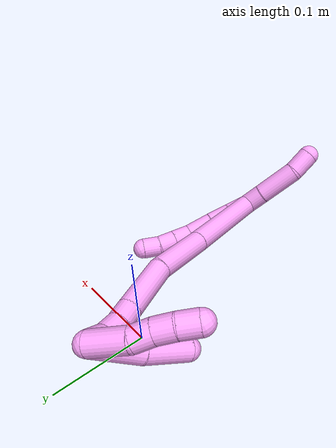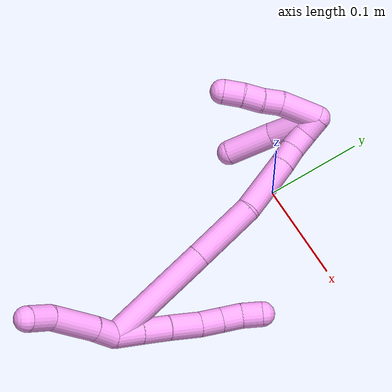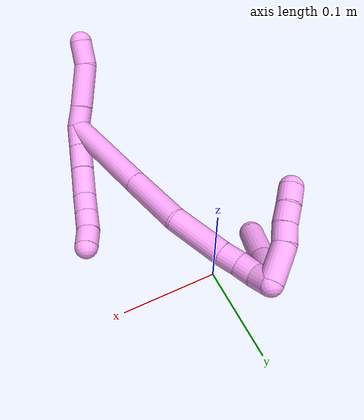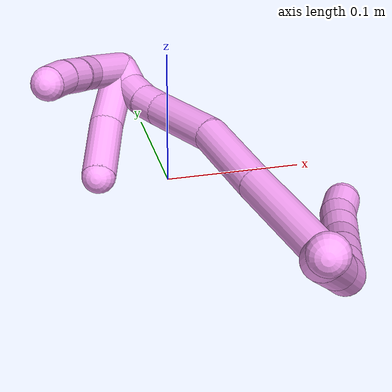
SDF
<sdf version="1.7">
 <world name="default">
  <model name="4">
   <static>0</static>
   <link name="4">
    <collision name="collision-cylinder-e_1_2_8">
     <pose>0.000407 0.000767 -0.013499 -3.08484 0.030057 -0.973894</pose>
     <geometry><cylinder><radius>0.0125</radius><length>0.027054</length></cylinder></geometry>
     <surface>
      <friction><ode><mu>1.16</mu><mu2>1.16</mu2><slip1>0</slip1><slip2>0</slip2></ode></friction>
      <contact><ode><kp>1e+06</kp><kd>1</kd><max_vel>0</max_vel><min_depth>0.001</min_depth></ode></contact>
     </surface>
    </collision>
    <visual name="visual-cylinder-e_1_2_8">
     <pose>0.000407 0.000767 -0.013499 -3.08484 0.030057 -0.973894</pose>
     <geometry><cylinder><radius>0.0125</radius><length>0.027054</length></cylinder></geometry>
     <material><ambient>1 0.65098 0.996078 1</ambient></material>
    </visual>
    <collision name="collision-cylinder-e_2_8_9">
     <pose>0.001231 0.002223 -0.040788 -3.09169 0.030286 -1.09086</pose>
     <geometry><cylinder><radius>0.0125</radius><length>0.027626</length></cylinder></geometry>
     <surface>
      <friction><ode><mu>1.16</mu><mu2>1.16</mu2><slip1>0</slip1><slip2>0</slip2></ode></friction>
      <contact><ode><kp>1e+06</kp><kd>1</kd><max_vel>0</max_vel><min_depth>0.001</min_depth></ode></contact>
     </surface>
    </collision>
    <visual name="visual-cylinder-e_2_8_9">
     <pose>0.001231 0.002223 -0.040788 -3.09169 0.030286 -1.09086</pose>
     <geometry><cylinder><radius>0.0125</radius><length>0.027626</length></cylinder></geometry>
     <material><ambient>1 0.65098 0.996078 1</ambient></material>
    </visual>
    <collision name="collision-cylinder-e_3_9_10">
     <pose>0.001648 0.003095 -0.070661 -3.13017 -7e-05 0.012192</pose>
     <geometry><cylinder><radius>0.0125</radius><length>0.032168</length></cylinder></geometry>
     <surface>
      <friction><ode><mu>1.16</mu><mu2>1.16</mu2><slip1>0</slip1><slip2>0</slip2></ode></friction>
      <contact><ode><kp>1e+06</kp><kd>1</kd><max_vel>0</max_vel><min_depth>0.001</min_depth></ode></contact>
     </surface>
    </collision>
    <visual name="visual-cylinder-e_3_9_10">
     <pose>0.001648 0.003095 -0.070661 -3.13017 -7e-05 0.012192</pose>
     <geometry><cylinder><radius>0.0125</radius><length>0.032168</length></cylinder></geometry>
     <material><ambient>1 0.65098 0.996078 1</ambient></material>
    </visual>
    <collision name="collision-cylinder-e_4_10_11">
     <pose>0.003191 0.00492 -0.097514 -2.99034 0.140761 -1.4987</pose>
     <geometry><cylinder><radius>0.0125</radius><length>0.022006</length></cylinder></geometry>
     <surface>
      <friction><ode><mu>1.16</mu><mu2>1.16</mu2><slip1>0</slip1><slip2>0</slip2></ode></friction>
      <contact><ode><kp>1e+06</kp><kd>1</kd><max_vel>0</max_vel><min_depth>0.001</min_depth></ode></contact>
     </surface>
    </collision>
    <visual name="visual-cylinder-e_4_10_11">
     <pose>0.003191 0.00492 -0.097514 -2.99034 0.140761 -1.4987</pose>
     <geometry><cylinder><radius>0.0125</radius><length>0.022006</length></cylinder></geometry>
     <material><ambient>1 0.65098 0.996078 1</ambient></material>
    </visual>
    <collision name="collision-cylinder-e_5_11_12">
     <pose>0.006157 0.008167 -0.118326 -2.98307 0.138934 -1.43882</pose>
     <geometry><cylinder><radius>0.0125</radius><length>0.020537</length></cylinder></geometry>
     <surface>
      <friction><ode><mu>1.16</mu><mu2>1.16</mu2><slip1>0</slip1><slip2>0</slip2></ode></friction>
      <contact><ode><kp>1e+06</kp><kd>1</kd><max_vel>0</max_vel><min_depth>0.001</min_depth></ode></contact>
     </surface>
    </collision>
    <visual name="visual-cylinder-e_5_11_12">
     <pose>0.006157 0.008167 -0.118326 -2.98307 0.138934 -1.43882</pose>
     <geometry><cylinder><radius>0.0125</radius><length>0.020537</length></cylinder></geometry>
     <material><ambient>1 0.65098 0.996078 1</ambient></material>
    </visual>
    <collision name="collision-cylinder-e_6_12_6">
     <pose>0.011004 0.010579 -0.138053 -3.05852 0.338819 -2.6649</pose>
     <geometry><cylinder><radius>0.0125</radius><length>0.020608</length></cylinder></geometry>
     <surface>
      <friction><ode><mu>1.16</mu><mu2>1.16</mu2><slip1>0</slip1><slip2>0</slip2></ode></friction>
      <contact><ode><kp>1e+06</kp><kd>1</kd><max_vel>0</max_vel><min_depth>0.001</min_depth></ode></contact>
     </surface>
    </collision>
    <visual name="visual-cylinder-e_6_12_6">
     <pose>0.011004 0.010579 -0.138053 -3.05852 0.338819 -2.6649</pose>
     <geometry><cylinder><radius>0.0125</radius><length>0.020608</length></cylinder></geometry>
     <material><ambient>1 0.65098 0.996078 1</ambient></material>
    </visual>
    <collision name="collision-cylinder-e_1_2_13">
     <pose>0.001701 0.004926 0.010752 -0.429609 0.142878 -0.031222</pose>
     <geometry><cylinder><radius>0.0125</radius><length>0.023896</length></cylinder></geometry>
     <surface>
      <friction><ode><mu>1.16</mu><mu2>1.16</mu2><slip1>0</slip1><slip2>0</slip2></ode></friction>
      <contact><ode><kp>1e+06</kp><kd>1</kd><max_vel>0</max_vel><min_depth>0.001</min_depth></ode></contact>
     </surface>
    </collision>
    <visual name="visual-cylinder-e_1_2_13">
     <pose>0.001701 0.004926 0.010752 -0.429609 0.142878 -0.031222</pose>
     <geometry><cylinder><radius>0.0125</radius><length>0.023896</length></cylinder></geometry>
     <material><ambient>1 0.65098 0.996078 1</ambient></material>
    </visual>
    <collision name="collision-cylinder-e_2_13_14">
     <pose>0.006891 0.018129 0.044216 -0.349452 0.143314 -0.025341</pose>
     <geometry><cylinder><radius>0.0125</radius><length>0.048849</length></cylinder></geometry>
     <surface>
      <friction><ode><mu>1.16</mu><mu2>1.16</mu2><slip1>0</slip1><slip2>0</slip2></ode></friction>
      <contact><ode><kp>1e+06</kp><kd>1</kd><max_vel>0</max_vel><min_depth>0.001</min_depth></ode></contact>
     </surface>
    </collision>
    <visual name="visual-cylinder-e_2_13_14">
     <pose>0.006891 0.018129 0.044216 -0.349452 0.143314 -0.025341</pose>
     <geometry><cylinder><radius>0.0125</radius><length>0.048849</length></cylinder></geometry>
     <material><ambient>1 0.65098 0.996078 1</ambient></material>
    </visual>
    <collision name="collision-cylinder-e_3_14_5">
     <pose>0.014872 0.027888 0.079709 -0.115524 0.335956 -0.019611</pose>
     <geometry><cylinder><radius>0.0125</radius><length>0.027255</length></cylinder></geometry>
     <surface>
      <friction><ode><mu>1.16</mu><mu2>1.16</mu2><slip1>0</slip1><slip2>0</slip2></ode></friction>
      <contact><ode><kp>1e+06</kp><kd>1</kd><max_vel>0</max_vel><min_depth>0.001</min_depth></ode></contact>
     </surface>
    </collision>
    <visual name="visual-cylinder-e_3_14_5">
     <pose>0.014872 0.027888 0.079709 -0.115524 0.335956 -0.019611</pose>
     <geometry><cylinder><radius>0.0125</radius><length>0.027255</length></cylinder></geometry>
     <material><ambient>1 0.65098 0.996078 1</ambient></material>
    </visual>
    <collision name="collision-cylinder-e_1_2_15">
     <pose>-0.00271 0.034739 -0.044193 -2.47541 -0.048169 0.139025</pose>
     <geometry><cylinder><radius>0.0125</radius><length>0.112555</length></cylinder></geometry>
     <surface>
      <friction><ode><mu>1.16</mu><mu2>1.16</mu2><slip1>0</slip1><slip2>0</slip2></ode></friction>
      <contact><ode><kp>1e+06</kp><kd>1</kd><max_vel>0</max_vel><min_depth>0.001</min_depth></ode></contact>
     </surface>
    </collision>
    <visual name="visual-cylinder-e_1_2_15">
     <pose>-0.00271 0.034739 -0.044193 -2.47541 -0.048169 0.139025</pose>
     <geometry><cylinder><radius>0.0125</radius><length>0.112555</length></cylinder></geometry>
     <material><ambient>1 0.65098 0.996078 1</ambient></material>
    </visual>
    <collision name="collision-cylinder-e_2_15_16">
     <pose>-0.006099 0.090759 -0.114451 -2.45688 -0.020188 0.056633</pose>
     <geometry><cylinder><radius>0.0125</radius><length>0.067311</length></cylinder></geometry>
     <surface>
      <friction><ode><mu>1.16</mu><mu2>1.16</mu2><slip1>0</slip1><slip2>0</slip2></ode></friction>
      <contact><ode><kp>1e+06</kp><kd>1</kd><max_vel>0</max_vel><min_depth>0.001</min_depth></ode></contact>
     </surface>
    </collision>
    <visual name="visual-cylinder-e_2_15_16">
     <pose>-0.006099 0.090759 -0.114451 -2.45688 -0.020188 0.056633</pose>
     <geometry><cylinder><radius>0.0125</radius><length>0.067311</length></cylinder></geometry>
     <material><ambient>1 0.65098 0.996078 1</ambient></material>
    </visual>
    <collision name="collision-cylinder-e_3_16_17">
     <pose>-0.014437 0.131505 -0.161858 -2.40217 -0.259171 0.648787</pose>
     <geometry><cylinder><radius>0.0125</radius><length>0.059768</length></cylinder></geometry>
     <surface>
      <friction><ode><mu>1.16</mu><mu2>1.16</mu2><slip1>0</slip1><slip2>0</slip2></ode></friction>
      <contact><ode><kp>1e+06</kp><kd>1</kd><max_vel>0</max_vel><min_depth>0.001</min_depth></ode></contact>
     </surface>
    </collision>
    <visual name="visual-cylinder-e_3_16_17">
     <pose>-0.014437 0.131505 -0.161858 -2.40217 -0.259171 0.648787</pose>
     <geometry><cylinder><radius>0.0125</radius><length>0.059768</length></cylinder></geometry>
     <material><ambient>1 0.65098 0.996078 1</ambient></material>
    </visual>
    <collision name="collision-cylinder-e_4_17_18">
     <pose>-0.024441 0.158125 -0.189802 -2.31601 -0.236445 0.529675</pose>
     <geometry><cylinder><radius>0.0125</radius><length>0.020028</length></cylinder></geometry>
     <surface>
      <friction><ode><mu>1.16</mu><mu2>1.16</mu2><slip1>0</slip1><slip2>0</slip2></ode></friction>
      <contact><ode><kp>1e+06</kp><kd>1</kd><max_vel>0</max_vel><min_depth>0.001</min_depth></ode></contact>
     </surface>
    </collision>
    <visual name="visual-cylinder-e_4_17_18">
     <pose>-0.024441 0.158125 -0.189802 -2.31601 -0.236445 0.529675</pose>
     <geometry><cylinder><radius>0.0125</radius><length>0.020028</length></cylinder></geometry>
     <material><ambient>1 0.65098 0.996078 1</ambient></material>
    </visual>
    <collision name="collision-cylinder-e_5_18_19">
     <pose>-0.027505 0.17254 -0.203486 -2.34373 -0.07062 0.167208</pose>
     <geometry><cylinder><radius>0.0125</radius><length>0.020335</length></cylinder></geometry>
     <surface>
      <friction><ode><mu>1.16</mu><mu2>1.16</mu2><slip1>0</slip1><slip2>0</slip2></ode></friction>
      <contact><ode><kp>1e+06</kp><kd>1</kd><max_vel>0</max_vel><min_depth>0.001</min_depth></ode></contact>
     </surface>
    </collision>
    <visual name="visual-cylinder-e_5_18_19">
     <pose>-0.027505 0.17254 -0.203486 -2.34373 -0.07062 0.167208</pose>
     <geometry><cylinder><radius>0.0125</radius><length>0.020335</length></cylinder></geometry>
     <material><ambient>1 0.65098 0.996078 1</ambient></material>
    </visual>
    <collision name="collision-cylinder-e_6_19_1">
     <pose>-0.025864 0.187586 -0.216386 -2.21267 0.237999 -0.468524</pose>
     <geometry><cylinder><radius>0.0125</radius><length>0.020003</length></cylinder></geometry>
     <surface>
      <friction><ode><mu>1.16</mu><mu2>1.16</mu2><slip1>0</slip1><slip2>0</slip2></ode></friction>
      <contact><ode><kp>1e+06</kp><kd>1</kd><max_vel>0</max_vel><min_depth>0.001</min_depth></ode></contact>
     </surface>
    </collision>
    <visual name="visual-cylinder-e_6_19_1">
     <pose>-0.025864 0.187586 -0.216386 -2.21267 0.237999 -0.468524</pose>
     <geometry><cylinder><radius>0.0125</radius><length>0.020003</length></cylinder></geometry>
     <material><ambient>1 0.65098 0.996078 1</ambient></material>
    </visual>
    <collision name="collision-cylinder-e_1_1_20">
     <pose>-0.040794 0.185473 -0.205483 0.534436 -0.72709 -0.207563</pose>
     <geometry><cylinder><radius>0.0125</radius><length>0.052018</length></cylinder></geometry>
     <surface>
      <friction><ode><mu>1.16</mu><mu2>1.16</mu2><slip1>0</slip1><slip2>0</slip2></ode></friction>
      <contact><ode><kp>1e+06</kp><kd>1</kd><max_vel>0</max_vel><min_depth>0.001</min_depth></ode></contact>
     </surface>
    </collision>
    <visual name="visual-cylinder-e_1_1_20">
     <pose>-0.040794 0.185473 -0.205483 0.534436 -0.72709 -0.207563</pose>
     <geometry><cylinder><radius>0.0125</radius><length>0.052018</length></cylinder></geometry>
     <material><ambient>1 0.65098 0.996078 1</ambient></material>
    </visual>
    <collision name="collision-cylinder-e_2_20_4">
     <pose>-0.070717 0.165529 -0.171013 0.51509 -0.554652 -0.149676</pose>
     <geometry><cylinder><radius>0.0125</radius><length>0.047982</length></cylinder></geometry>
     <surface>
      <friction><ode><mu>1.16</mu><mu2>1.16</mu2><slip1>0</slip1><slip2>0</slip2></ode></friction>
      <contact><ode><kp>1e+06</kp><kd>1</kd><max_vel>0</max_vel><min_depth>0.001</min_depth></ode></contact>
     </surface>
    </collision>
    <visual name="visual-cylinder-e_2_20_4">
     <pose>-0.070717 0.165529 -0.171013 0.51509 -0.554652 -0.149676</pose>
     <geometry><cylinder><radius>0.0125</radius><length>0.047982</length></cylinder></geometry>
     <material><ambient>1 0.65098 0.996078 1</ambient></material>
    </visual>
    <collision name="collision-cylinder-e_1_1_21">
     <pose>-0.029572 0.202771 -0.20471 -0.400142 -0.309064 0.063156</pose>
     <geometry><cylinder><radius>0.0125</radius><length>0.039882</length></cylinder></geometry>
     <surface>
      <friction><ode><mu>1.16</mu><mu2>1.16</mu2><slip1>0</slip1><slip2>0</slip2></ode></friction>
      <contact><ode><kp>1e+06</kp><kd>1</kd><max_vel>0</max_vel><min_depth>0.001</min_depth></ode></contact>
     </surface>
    </collision>
    <visual name="visual-cylinder-e_1_1_21">
     <pose>-0.029572 0.202771 -0.20471 -0.400142 -0.309064 0.063156</pose>
     <geometry><cylinder><radius>0.0125</radius><length>0.039882</length></cylinder></geometry>
     <material><ambient>1 0.65098 0.996078 1</ambient></material>
    </visual>
    <collision name="collision-cylinder-e_2_21_22">
     <pose>-0.036852 0.211747 -0.177394 -0.159169 -0.121587 0.009709</pose>
     <geometry><cylinder><radius>0.0125</radius><length>0.020039</length></cylinder></geometry>
     <surface>
      <friction><ode><mu>1.16</mu><mu2>1.16</mu2><slip1>0</slip1><slip2>0</slip2></ode></friction>
      <contact><ode><kp>1e+06</kp><kd>1</kd><max_vel>0</max_vel><min_depth>0.001</min_depth></ode></contact>
     </surface>
    </collision>
    <visual name="visual-cylinder-e_2_21_22">
     <pose>-0.036852 0.211747 -0.177394 -0.159169 -0.121587 0.009709</pose>
     <geometry><cylinder><radius>0.0125</radius><length>0.020039</length></cylinder></geometry>
     <material><ambient>1 0.65098 0.996078 1</ambient></material>
    </visual>
    <collision name="collision-cylinder-e_3_22_23">
     <pose>-0.040254 0.216125 -0.158226 -0.291198 -0.220326 0.032436</pose>
     <geometry><cylinder><radius>0.0125</radius><length>0.020004</length></cylinder></geometry>
     <surface>
      <friction><ode><mu>1.16</mu><mu2>1.16</mu2><slip1>0</slip1><slip2>0</slip2></ode></friction>
      <contact><ode><kp>1e+06</kp><kd>1</kd><max_vel>0</max_vel><min_depth>0.001</min_depth></ode></contact>
     </surface>
    </collision>
    <visual name="visual-cylinder-e_3_22_23">
     <pose>-0.040254 0.216125 -0.158226 -0.291198 -0.220326 0.032436</pose>
     <geometry><cylinder><radius>0.0125</radius><length>0.020004</length></cylinder></geometry>
     <material><ambient>1 0.65098 0.996078 1</ambient></material>
    </visual>
    <collision name="collision-cylinder-e_4_23_3">
     <pose>-0.045639 0.220644 -0.139519 -0.181366 -0.324458 0.029763</pose>
     <geometry><cylinder><radius>0.0125</radius><length>0.020075</length></cylinder></geometry>
     <surface>
      <friction><ode><mu>1.16</mu><mu2>1.16</mu2><slip1>0</slip1><slip2>0</slip2></ode></friction>
      <contact><ode><kp>1e+06</kp><kd>1</kd><max_vel>0</max_vel><min_depth>0.001</min_depth></ode></contact>
     </surface>
    </collision>
    <visual name="visual-cylinder-e_4_23_3">
     <pose>-0.045639 0.220644 -0.139519 -0.181366 -0.324458 0.029763</pose>
     <geometry><cylinder><radius>0.0125</radius><length>0.020075</length></cylinder></geometry>
     <material><ambient>1 0.65098 0.996078 1</ambient></material>
    </visual>
    <collision name="collision-sphere-3">
     <pose>-0.048839 0.22236 -0.130161 0 -0 0</pose>
     <geometry><sphere><radius>0.0125</radius></sphere></geometry>
     <surface>
      <friction><ode><mu>1.16</mu><mu2>1.16</mu2><slip1>0</slip1><slip2>0</slip2></ode></friction>
      <contact><ode><kp>1e+06</kp><kd>1</kd><max_vel>0</max_vel><min_depth>0.001</min_depth></ode></contact>
     </surface>
    </collision>
    <visual name="visual-sphere-3">
     <pose>-0.048839 0.22236 -0.130161 0 -0 0</pose>
     <geometry><sphere><radius>0.0125</radius></sphere></geometry>
     <material><ambient>1 0.65098 0.996078 1</ambient></material>
    </visual>
    <collision name="collision-sphere-23">
     <pose>-0.042439 0.218927 -0.148876 0 -0 0</pose>
     <geometry><sphere><radius>0.0125</radius></sphere></geometry>
     <surface>
      <friction><ode><mu>1.16</mu><mu2>1.16</mu2><slip1>0</slip1><slip2>0</slip2></ode></friction>
      <contact><ode><kp>1e+06</kp><kd>1</kd><max_vel>0</max_vel><min_depth>0.001</min_depth></ode></contact>
     </surface>
    </collision>
    <visual name="visual-sphere-23">
     <pose>-0.042439 0.218927 -0.148876 0 -0 0</pose>
     <geometry><sphere><radius>0.0125</radius></sphere></geometry>
     <material><ambient>1 0.65098 0.996078 1</ambient></material>
    </visual>
    <collision name="collision-sphere-22">
     <pose>-0.038068 0.213323 -0.167575 0 -0 0</pose>
     <geometry><sphere><radius>0.0125</radius></sphere></geometry>
     <surface>
      <friction><ode><mu>1.16</mu><mu2>1.16</mu2><slip1>0</slip1><slip2>0</slip2></ode></friction>
      <contact><ode><kp>1e+06</kp><kd>1</kd><max_vel>0</max_vel><min_depth>0.001</min_depth></ode></contact>
     </surface>
    </collision>
    <visual name="visual-sphere-22">
     <pose>-0.038068 0.213323 -0.167575 0 -0 0</pose>
     <geometry><sphere><radius>0.0125</radius></sphere></geometry>
     <material><ambient>1 0.65098 0.996078 1</ambient></material>
    </visual>
    <collision name="collision-sphere-21">
     <pose>-0.035637 0.210171 -0.187214 0 -0 0</pose>
     <geometry><sphere><radius>0.0125</radius></sphere></geometry>
     <surface>
      <friction><ode><mu>1.16</mu><mu2>1.16</mu2><slip1>0</slip1><slip2>0</slip2></ode></friction>
      <contact><ode><kp>1e+06</kp><kd>1</kd><max_vel>0</max_vel><min_depth>0.001</min_depth></ode></contact>
     </surface>
    </collision>
    <visual name="visual-sphere-21">
     <pose>-0.035637 0.210171 -0.187214 0 -0 0</pose>
     <geometry><sphere><radius>0.0125</radius></sphere></geometry>
     <material><ambient>1 0.65098 0.996078 1</ambient></material>
    </visual>
    <collision name="collision-sphere-4">
     <pose>-0.083352 0.155482 -0.153265 0 -0 0</pose>
     <geometry><sphere><radius>0.0125</radius></sphere></geometry>
     <surface>
      <friction><ode><mu>1.16</mu><mu2>1.16</mu2><slip1>0</slip1><slip2>0</slip2></ode></friction>
      <contact><ode><kp>1e+06</kp><kd>1</kd><max_vel>0</max_vel><min_depth>0.001</min_depth></ode></contact>
     </surface>
    </collision>
    <visual name="visual-sphere-4">
     <pose>-0.083352 0.155482 -0.153265 0 -0 0</pose>
     <geometry><sphere><radius>0.0125</radius></sphere></geometry>
     <material><ambient>1 0.65098 0.996078 1</ambient></material>
    </visual>
    <collision name="collision-sphere-20">
     <pose>-0.058083 0.175575 -0.188761 0 -0 0</pose>
     <geometry><sphere><radius>0.0125</radius></sphere></geometry>
     <surface>
      <friction><ode><mu>1.16</mu><mu2>1.16</mu2><slip1>0</slip1><slip2>0</slip2></ode></friction>
      <contact><ode><kp>1e+06</kp><kd>1</kd><max_vel>0</max_vel><min_depth>0.001</min_depth></ode></contact>
     </surface>
    </collision>
    <visual name="visual-sphere-20">
     <pose>-0.058083 0.175575 -0.188761 0 -0 0</pose>
     <geometry><sphere><radius>0.0125</radius></sphere></geometry>
     <material><ambient>1 0.65098 0.996078 1</ambient></material>
    </visual>
    <collision name="collision-sphere-12">
     <pose>0.007579 0.009773 -0.128368 0 -0 0</pose>
     <geometry><sphere><radius>0.0125</radius></sphere></geometry>
     <surface>
      <friction><ode><mu>1.16</mu><mu2>1.16</mu2><slip1>0</slip1><slip2>0</slip2></ode></friction>
      <contact><ode><kp>1e+06</kp><kd>1</kd><max_vel>0</max_vel><min_depth>0.001</min_depth></ode></contact>
     </surface>
    </collision>
    <visual name="visual-sphere-12">
     <pose>0.007579 0.009773 -0.128368 0 -0 0</pose>
     <geometry><sphere><radius>0.0125</radius></sphere></geometry>
     <material><ambient>1 0.65098 0.996078 1</ambient></material>
    </visual>
    <collision name="collision-sphere-11">
     <pose>0.004735 0.006562 -0.108284 0 -0 0</pose>
     <geometry><sphere><radius>0.0125</radius></sphere></geometry>
     <surface>
      <friction><ode><mu>1.16</mu><mu2>1.16</mu2><slip1>0</slip1><slip2>0</slip2></ode></friction>
      <contact><ode><kp>1e+06</kp><kd>1</kd><max_vel>0</max_vel><min_depth>0.001</min_depth></ode></contact>
     </surface>
    </collision>
    <visual name="visual-sphere-11">
     <pose>0.004735 0.006562 -0.108284 0 -0 0</pose>
     <geometry><sphere><radius>0.0125</radius></sphere></geometry>
     <material><ambient>1 0.65098 0.996078 1</ambient></material>
    </visual>
    <collision name="collision-sphere-10">
     <pose>0.001647 0.003279 -0.086744 0 -0 0</pose>
     <geometry><sphere><radius>0.0125</radius></sphere></geometry>
     <surface>
      <friction><ode><mu>1.16</mu><mu2>1.16</mu2><slip1>0</slip1><slip2>0</slip2></ode></friction>
      <contact><ode><kp>1e+06</kp><kd>1</kd><max_vel>0</max_vel><min_depth>0.001</min_depth></ode></contact>
     </surface>
    </collision>
    <visual name="visual-sphere-10">
     <pose>0.001647 0.003279 -0.086744 0 -0 0</pose>
     <geometry><sphere><radius>0.0125</radius></sphere></geometry>
     <material><ambient>1 0.65098 0.996078 1</ambient></material>
    </visual>
    <collision name="collision-sphere-9">
     <pose>0.00165 0.002911 -0.054578 0 -0 0</pose>
     <geometry><sphere><radius>0.0125</radius></sphere></geometry>
     <surface>
      <friction><ode><mu>1.16</mu><mu2>1.16</mu2><slip1>0</slip1><slip2>0</slip2></ode></friction>
      <contact><ode><kp>1e+06</kp><kd>1</kd><max_vel>0</max_vel><min_depth>0.001</min_depth></ode></contact>
     </surface>
    </collision>
    <visual name="visual-sphere-9">
     <pose>0.00165 0.002911 -0.054578 0 -0 0</pose>
     <geometry><sphere><radius>0.0125</radius></sphere></geometry>
     <material><ambient>1 0.65098 0.996078 1</ambient></material>
    </visual>
    <collision name="collision-sphere-2">
     <geometry><sphere><radius>0.0125</radius></sphere></geometry>
     <surface>
      <friction><ode><mu>1.16</mu><mu2>1.16</mu2><slip1>0</slip1><slip2>0</slip2></ode></friction>
      <contact><ode><kp>1e+06</kp><kd>1</kd><max_vel>0</max_vel><min_depth>0.001</min_depth></ode></contact>
     </surface>
    </collision>
    <visual name="visual-sphere-2">
     <geometry><sphere><radius>0.0125</radius></sphere></geometry>
     <material><ambient>1 0.65098 0.996078 1</ambient></material>
    </visual>
    <collision name="collision-sphere-19">
     <pose>-0.028222 0.179801 -0.210568 0 -0 0</pose>
     <geometry><sphere><radius>0.0125</radius></sphere></geometry>
     <surface>
      <friction><ode><mu>1.16</mu><mu2>1.16</mu2><slip1>0</slip1><slip2>0</slip2></ode></friction>
      <contact><ode><kp>1e+06</kp><kd>1</kd><max_vel>0</max_vel><min_depth>0.001</min_depth></ode></contact>
     </surface>
    </collision>
    <visual name="visual-sphere-19">
     <pose>-0.028222 0.179801 -0.210568 0 -0 0</pose>
     <geometry><sphere><radius>0.0125</radius></sphere></geometry>
     <material><ambient>1 0.65098 0.996078 1</ambient></material>
    </visual>
    <collision name="collision-sphere-8">
     <pose>0.000813 0.001534 -0.026999 0 -0 0</pose>
     <geometry><sphere><radius>0.0125</radius></sphere></geometry>
     <surface>
      <friction><ode><mu>1.16</mu><mu2>1.16</mu2><slip1>0</slip1><slip2>0</slip2></ode></friction>
      <contact><ode><kp>1e+06</kp><kd>1</kd><max_vel>0</max_vel><min_depth>0.001</min_depth></ode></contact>
     </surface>
    </collision>
    <visual name="visual-sphere-8">
     <pose>0.000813 0.001534 -0.026999 0 -0 0</pose>
     <geometry><sphere><radius>0.0125</radius></sphere></geometry>
     <material><ambient>1 0.65098 0.996078 1</ambient></material>
    </visual>
    <collision name="collision-sphere-6">
     <pose>0.014428 0.011385 -0.147737 0 -0 0</pose>
     <geometry><sphere><radius>0.0125</radius></sphere></geometry>
     <surface>
      <friction><ode><mu>1.16</mu><mu2>1.16</mu2><slip1>0</slip1><slip2>0</slip2></ode></friction>
      <contact><ode><kp>1e+06</kp><kd>1</kd><max_vel>0</max_vel><min_depth>0.001</min_depth></ode></contact>
     </surface>
    </collision>
    <visual name="visual-sphere-6">
     <pose>0.014428 0.011385 -0.147737 0 -0 0</pose>
     <geometry><sphere><radius>0.0125</radius></sphere></geometry>
     <material><ambient>1 0.65098 0.996078 1</ambient></material>
    </visual>
    <collision name="collision-sphere-13">
     <pose>0.003403 0.009852 0.021503 0 -0 0</pose>
     <geometry><sphere><radius>0.0125</radius></sphere></geometry>
     <surface>
      <friction><ode><mu>1.16</mu><mu2>1.16</mu2><slip1>0</slip1><slip2>0</slip2></ode></friction>
      <contact><ode><kp>1e+06</kp><kd>1</kd><max_vel>0</max_vel><min_depth>0.001</min_depth></ode></contact>
     </surface>
    </collision>
    <visual name="visual-sphere-13">
     <pose>0.003403 0.009852 0.021503 0 -0 0</pose>
     <geometry><sphere><radius>0.0125</radius></sphere></geometry>
     <material><ambient>1 0.65098 0.996078 1</ambient></material>
    </visual>
    <collision name="collision-sphere-14">
     <pose>0.010379 0.026405 0.06693 0 -0 0</pose>
     <geometry><sphere><radius>0.0125</radius></sphere></geometry>
     <surface>
      <friction><ode><mu>1.16</mu><mu2>1.16</mu2><slip1>0</slip1><slip2>0</slip2></ode></friction>
      <contact><ode><kp>1e+06</kp><kd>1</kd><max_vel>0</max_vel><min_depth>0.001</min_depth></ode></contact>
     </surface>
    </collision>
    <visual name="visual-sphere-14">
     <pose>0.010379 0.026405 0.06693 0 -0 0</pose>
     <geometry><sphere><radius>0.0125</radius></sphere></geometry>
     <material><ambient>1 0.65098 0.996078 1</ambient></material>
    </visual>
    <collision name="collision-sphere-5">
     <pose>0.019365 0.029371 0.092489 0 -0 0</pose>
     <geometry><sphere><radius>0.0125</radius></sphere></geometry>
     <surface>
      <friction><ode><mu>1.16</mu><mu2>1.16</mu2><slip1>0</slip1><slip2>0</slip2></ode></friction>
      <contact><ode><kp>1e+06</kp><kd>1</kd><max_vel>0</max_vel><min_depth>0.001</min_depth></ode></contact>
     </surface>
    </collision>
    <visual name="visual-sphere-5">
     <pose>0.019365 0.029371 0.092489 0 -0 0</pose>
     <geometry><sphere><radius>0.0125</radius></sphere></geometry>
     <material><ambient>1 0.65098 0.996078 1</ambient></material>
    </visual>
    <collision name="collision-sphere-15">
     <pose>-0.00542 0.069478 -0.088387 0 -0 0</pose>
     <geometry><sphere><radius>0.0125</radius></sphere></geometry>
     <surface>
      <friction><ode><mu>1.16</mu><mu2>1.16</mu2><slip1>0</slip1><slip2>0</slip2></ode></friction>
      <contact><ode><kp>1e+06</kp><kd>1</kd><max_vel>0</max_vel><min_depth>0.001</min_depth></ode></contact>
     </surface>
    </collision>
    <visual name="visual-sphere-15">
     <pose>-0.00542 0.069478 -0.088387 0 -0 0</pose>
     <geometry><sphere><radius>0.0125</radius></sphere></geometry>
     <material><ambient>1 0.65098 0.996078 1</ambient></material>
    </visual>
    <collision name="collision-sphere-16">
     <pose>-0.006778 0.11204 -0.140515 0 -0 0</pose>
     <geometry><sphere><radius>0.0125</radius></sphere></geometry>
     <surface>
      <friction><ode><mu>1.16</mu><mu2>1.16</mu2><slip1>0</slip1><slip2>0</slip2></ode></friction>
      <contact><ode><kp>1e+06</kp><kd>1</kd><max_vel>0</max_vel><min_depth>0.001</min_depth></ode></contact>
     </surface>
    </collision>
    <visual name="visual-sphere-16">
     <pose>-0.006778 0.11204 -0.140515 0 -0 0</pose>
     <geometry><sphere><radius>0.0125</radius></sphere></geometry>
     <material><ambient>1 0.65098 0.996078 1</ambient></material>
    </visual>
    <collision name="collision-sphere-17">
     <pose>-0.022096 0.15097 -0.1832 0 -0 0</pose>
     <geometry><sphere><radius>0.0125</radius></sphere></geometry>
     <surface>
      <friction><ode><mu>1.16</mu><mu2>1.16</mu2><slip1>0</slip1><slip2>0</slip2></ode></friction>
      <contact><ode><kp>1e+06</kp><kd>1</kd><max_vel>0</max_vel><min_depth>0.001</min_depth></ode></contact>
     </surface>
    </collision>
    <visual name="visual-sphere-17">
     <pose>-0.022096 0.15097 -0.1832 0 -0 0</pose>
     <geometry><sphere><radius>0.0125</radius></sphere></geometry>
     <material><ambient>1 0.65098 0.996078 1</ambient></material>
    </visual>
    <collision name="collision-sphere-18">
     <pose>-0.026787 0.16528 -0.196404 0 -0 0</pose>
     <geometry><sphere><radius>0.0125</radius></sphere></geometry>
     <surface>
      <friction><ode><mu>1.16</mu><mu2>1.16</mu2><slip1>0</slip1><slip2>0</slip2></ode></friction>
      <contact><ode><kp>1e+06</kp><kd>1</kd><max_vel>0</max_vel><min_depth>0.001</min_depth></ode></contact>
     </surface>
    </collision>
    <visual name="visual-sphere-18">
     <pose>-0.026787 0.16528 -0.196404 0 -0 0</pose>
     <geometry><sphere><radius>0.0125</radius></sphere></geometry>
     <material><ambient>1 0.65098 0.996078 1</ambient></material>
    </visual>
    <collision name="collision-sphere-1">
     <pose>-0.023506 0.195371 -0.222205 0 -0 0</pose>
     <geometry><sphere><radius>0.0125</radius></sphere></geometry>
     <surface>
      <friction><ode><mu>1.16</mu><mu2>1.16</mu2><slip1>0</slip1><slip2>0</slip2></ode></friction>
      <contact><ode><kp>1e+06</kp><kd>1</kd><max_vel>0</max_vel><min_depth>0.001</min_depth></ode></contact>
     </surface>
    </collision>
    <visual name="visual-sphere-1">
     <pose>-0.023506 0.195371 -0.222205 0 -0 0</pose>
     <geometry><sphere><radius>0.0125</radius></sphere></geometry>
     <material><ambient>1 0.65098 0.996078 1</ambient></material>
    </visual>
    <inertial>
     <pose>-0.01466 0.092559 -0.103727 0 -0 0</pose>
     <mass>0.75</mass>
     <inertia><ixx>0.000234</ixx><ixy>0</ixy><ixz>0</ixz><iyy>-5e-05</iyy><iyz>0</iyz><izz>-9.3e-05</izz></inertia>
    </inertial>
   </link>
   <pose>0.059799 -0.219532 0.041767 1.06026 -0.862217 0.067656</pose>
  </model>
 </world>
</sdf>
